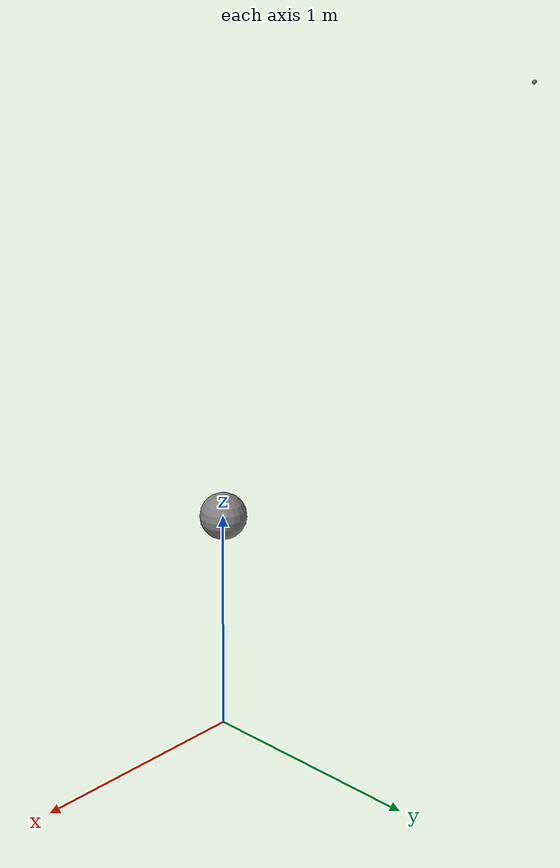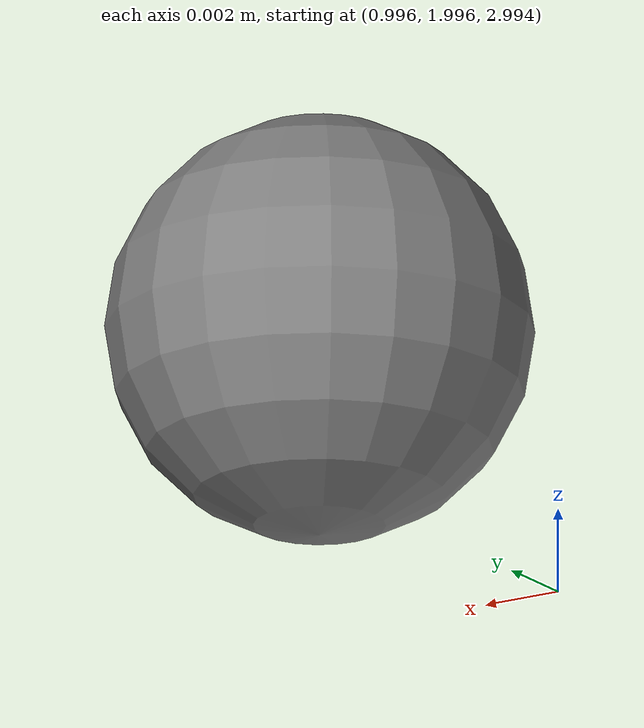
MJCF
<mujoco model="t18">
            <worldbody>
                <body name="b1" pos="0 0 1">
                    <joint type="free"/>
                    <geom type="sphere" size="0.1" mass="1"/>
                </body>
                <body name="b_empty" pos="1 2 3">
                    <joint type="free"/>
                    <site name="anchor"/>
                    <geom type="sphere" size="0.001" mass="0.001"/>
                </body>
            </worldbody>
            <sensor>
                <framepos name="fp" objtype="body" objname="b_empty"/>
                <framepos name="fp_x" objtype="xbody" objname="b_empty"/>
            </sensor>
        </mujoco>
